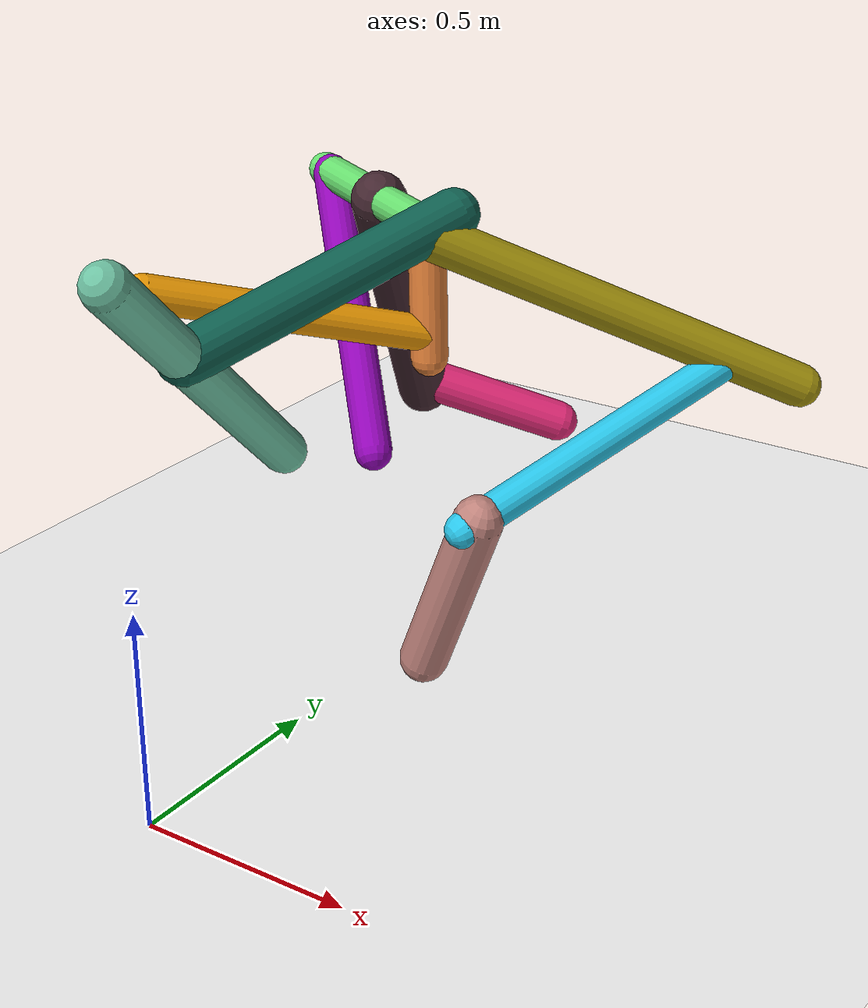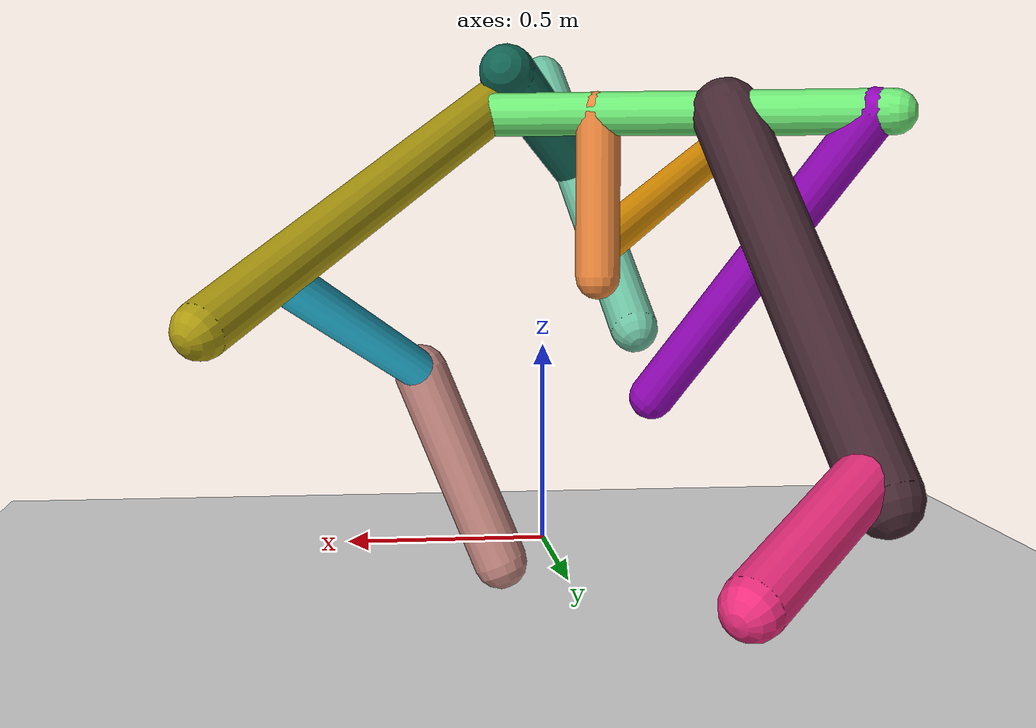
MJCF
<mujoco model="morphology">
  <option timestep="0.01"/>
  <default>
    <default class="/"/>
    <default class="0/"/>
    <default class="0/1/"/>
    <default class="0/1/2/"/>
    <default class="0/1/2/3/"/>
    <default class="0/1/2/3/4/"/>
    <default class="0/1/2/5/"/>
    <default class="0/1/2/5/6/"/>
    <default class="0/1/2/5/7/"/>
    <default class="0/1/2/5/7/8/"/>
    <default class="0/1/2/5/9/"/>
    <default class="0/1/2/5/9/10/"/>
  </default>
  <asset>
    <texture name="texplane" type="2d" builtin="checker" rgb1="0.10000000000000001 0.20000000000000001 0.29999999999999999" rgb2="0.20000000000000001 0.29999999999999999 0.40000000000000002" width="300" height="300"/>
    <material name="MatPlane" class="/" texture="texplane" texrepeat="20 20" specular="1" shininess="1" reflectance="0.5"/>
  </asset>
  <worldbody>
    <light name="//unnamed_light_0" class="/" directional="true" pos="0 0 1.5" dir="0 0 -1.3" cutoff="100" exponent="1" diffuse="1 1 1" specular="0.10000000000000001 0.10000000000000001 0.10000000000000001"/>
    <geom name="ground" class="/" type="plane" size="15 15 0.5" material="MatPlane" rgba="1 1 1 1"/>
    <site name="body" class="/" size="9.9999999999999995e-07 9.9999999999999995e-07 9.9999999999999995e-07" pos="0 0 1.1837309360504151"/>
    <body pos="0 0 1.1837309360504151" name="0/">
      <freejoint name="0/"/>
      <geom name="0/geom" class="0/" type="capsule" contype="1" conaffinity="1" condim="3" size="0.052288338146323457" rgba="0.42226951076375374 0.74847740433927057 0.62638258080796771 1" friction="0.59999999999999998 0.10000000000000001 0.10000000000000001" fromto="0 0 0 -0.12704674509612435 0.64384998989902753 -0.59277456994648003"/>
      <site name="0/end0" class="0/" size="0.0050000000000000001" pos="-0.12704674509612435 0.64384998989902753 -0.59277456994648003"/>
      <site name="0/attach1" class="0/" size="9.9999999999999995e-07 9.9999999999999995e-07 9.9999999999999995e-07" pos="-0.049154623440611972 0.24910676603153664 -0.22934559046628258"/>
      <body pos="-0.049154623440611972 0.24910676603153664 -0.22934559046628258" name="0/1/">
        <geom name="0/1/geom" class="0/1/" type="capsule" contype="1" conaffinity="1" condim="3" size="0.057500479084429568" rgba="0.064169073715757308 0.38423266517830568 0.32181332329965007 1" friction="0.59999999999999998 0.10000000000000001 0.10000000000000001" fromto="0 0 0 0.22654214215696611 0.63466869568983686 0.17996999594814711"/>
        <site name="0/1/end1" class="0/1/" size="0.0050000000000000001" pos="0.22654214215696611 0.63466869568983686 0.17996999594814711"/>
        <site name="0/1/attach2" class="0/1/" size="9.9999999999999995e-07 9.9999999999999995e-07 9.9999999999999995e-07" pos="0.19599134297576684 0.54907916394090861 0.15569977782226974"/>
        <body pos="0.19599134297576684 0.54907916394090861 0.15569977782226974" name="0/1/2/">
          <geom name="0/1/2/geom" class="0/1/2/" type="capsule" contype="1" conaffinity="1" condim="3" size="0.052369877896017096" rgba="0.66452054570830044 0.5929024489449527 0.056026679281930947 1" friction="0.59999999999999998 0.10000000000000001 0.10000000000000001" fromto="0 0 0 0.60259304777219969 0.68951502635638051 -0.44867558773393124"/>
          <site name="0/1/2/end2" class="0/1/2/" size="0.0050000000000000001" pos="0.60259304777219969 0.68951502635638051 -0.44867558773393124"/>
          <site name="0/1/2/attach3" class="0/1/2/" size="9.9999999999999995e-07 9.9999999999999995e-07 9.9999999999999995e-07" pos="0.48585681975661971 0.55593999817693907 -0.3617567361003613"/>
          <body pos="0.48585681975661971 0.55593999817693907 -0.3617567361003613" name="0/1/2/3/">
            <geom name="0/1/2/3/geom" class="0/1/2/3/" type="capsule" contype="1" conaffinity="1" condim="3" size="0.041376285610458516" rgba="0.16284962204922504 0.77488098302931951 0.91271055050106398 1" friction="0.59999999999999998 0.10000000000000001 0.10000000000000001" fromto="0 0 0 -0.30151948870085021 -0.66994289081919445 -0.25179534344808235"/>
            <site name="0/1/2/3/end3" class="0/1/2/3/" size="0.0050000000000000001" pos="-0.30151948870085021 -0.66994289081919445 -0.25179534344808235"/>
            <site name="0/1/2/3/attach4" class="0/1/2/3/" size="9.9999999999999995e-07 9.9999999999999995e-07 9.9999999999999995e-07" pos="-0.28528433035160056 -0.63387016807656993 -0.23823755555816215"/>
            <body pos="-0.28528433035160056 -0.63387016807656993 -0.23823755555816215" name="0/1/2/3/4/">
              <geom name="0/1/2/3/4/geom" class="0/1/2/3/4/" type="capsule" contype="1" conaffinity="1" condim="3" size="0.057365957236909126" rgba="0.74393400841757729 0.51080683595287346 0.48192800401603964 1" friction="0.59999999999999998 0.10000000000000001 0.10000000000000001" fromto="0 0 0 -0.16802162271192511 0.027785442388910009 -0.41009077311920722"/>
              <site name="0/1/2/3/4/end4" class="0/1/2/3/4/" size="0.0050000000000000001" pos="-0.16802162271192511 0.027785442388910009 -0.41009077311920722"/>
            </body>
          </body>
          <site name="0/1/2/attach5" class="0/1/2/" size="9.9999999999999995e-07 9.9999999999999995e-07 9.9999999999999995e-07" pos="0.084759402278571566 0.096985655098619214 -0.063109713551974492"/>
          <body pos="0.084759402278571566 0.096985655098619214 -0.063109713551974492" name="0/1/2/5/">
            <joint name="0/1/2/5/joint/" class="0/1/2/" type="hinge" axis="0 0.54540771226214657 0.83817088198348388" limited="true" range="-46.931161980203406 46.931161980203406"/>
            <geom name="0/1/2/5/geom" class="0/1/2/5/" type="capsule" contype="1" conaffinity="1" condim="3" size="0.043602435949648077" rgba="0.42287804036395948 0.90141170555389372 0.45112798410099064 1" friction="0.59999999999999998 0.10000000000000001 0.10000000000000001" fromto="0 0 0 -0.72832299073816664 0.41204442920978979 -0.0080158718035163723"/>
            <site name="0/1/2/5/end5" class="0/1/2/5/" size="0.0050000000000000001" pos="-0.72832299073816664 0.41204442920978979 -0.0080158718035163723"/>
            <site name="0/1/2/5/attach6" class="0/1/2/5/" size="9.9999999999999995e-07 9.9999999999999995e-07 9.9999999999999995e-07" pos="-0.69832636092602796 0.39507401310822882 -0.0076857309976248248"/>
            <body pos="-0.69832636092602796 0.39507401310822882 -0.0076857309976248248" name="0/1/2/5/6/">
              <joint name="0/1/2/5/6/joint/" class="0/1/2/5/" type="hinge" axis="8.6736173798840355e-19 0.019450221493714375 0.99981082654862552" limited="true" range="-48.366431699162163 48.366431699162163"/>
              <geom name="0/1/2/5/6/geom" class="0/1/2/5/6/" type="capsule" contype="1" conaffinity="1" condim="3" size="0.046111230336415954" rgba="0.57292148179427405 0.021660126271155322 0.7182727881708193 1" friction="0.59999999999999998 0.10000000000000001 0.10000000000000001" fromto="0 0 0 0.35683083533172155 -0.33132996753047095 -0.56230530141512058"/>
              <site name="0/1/2/5/6/end6" class="0/1/2/5/6/" size="0.0050000000000000001" pos="0.35683083533172155 -0.33132996753047095 -0.56230530141512058"/>
            </body>
            <site name="0/1/2/5/attach7" class="0/1/2/5/" size="9.9999999999999995e-07 9.9999999999999995e-07 9.9999999999999995e-07" pos="-0.44863564198862421 0.25381296399694042 -0.0049376524404704959"/>
            <body pos="-0.44863564198862421 0.25381296399694042 -0.0049376524404704959" name="0/1/2/5/7/">
              <joint name="0/1/2/5/7/joint/" class="0/1/2/5/" type="hinge" axis="-0.49247521979685732 -0.87016182360626226 0.016928042540748669" limited="true" range="-32.813194486834625 32.813194486834625"/>
              <geom name="0/1/2/5/7/geom" class="0/1/2/5/7/" type="capsule" contype="1" conaffinity="1" condim="3" size="0.068567529184124176" rgba="0.2688189758039462 0.15610056652498783 0.19377558463714306 1" friction="0.59999999999999998 0.10000000000000001 0.10000000000000001" fromto="0 0 0 -0.18215600939475429 0.43856439436738337 -0.67026120373462017"/>
              <site name="0/1/2/5/7/end7" class="0/1/2/5/7/" size="0.0050000000000000001" pos="-0.18215600939475429 0.43856439436738337 -0.67026120373462017"/>
              <site name="0/1/2/5/7/attach8" class="0/1/2/5/7/" size="9.9999999999999995e-07 9.9999999999999995e-07 9.9999999999999995e-07" pos="-0.17001713482281397 0.40933846768709703 -0.6255950040873709"/>
              <body pos="-0.17001713482281397 0.40933846768709703 -0.6255950040873709" name="0/1/2/5/7/8/">
                <joint name="0/1/2/5/7/8/joint/" class="0/1/2/5/7/" type="hinge" axis="-0.97510330673215917 -0.12141454651287847 0.18555874836579611" limited="true" range="-44.037597610287079 44.037597610287079"/>
                <geom name="0/1/2/5/7/8/geom" class="0/1/2/5/7/8/" type="capsule" contype="1" conaffinity="1" condim="3" size="0.056462233378987259" rgba="0.92641753841017038 0.17344250569073349 0.49123516482485707 1" friction="0.59999999999999998 0.10000000000000001 0.10000000000000001" fromto="0 0 0 0.27533227785052894 0.27347782635834639 -0.16367924731591765"/>
                <site name="0/1/2/5/7/8/end8" class="0/1/2/5/7/8/" size="0.0050000000000000001" pos="0.27533227785052894 0.27347782635834639 -0.16367924731591765"/>
              </body>
            </body>
            <site name="0/1/2/5/attach9" class="0/1/2/5/" size="9.9999999999999995e-07 9.9999999999999995e-07 9.9999999999999995e-07" pos="-0.22070124179073336 0.12486042368014051 -0.0024290224029291808"/>
            <body pos="-0.22070124179073336 0.12486042368014051 -0.0024290224029291808" name="0/1/2/5/9/">
              <joint name="0/1/2/5/9/joint/" class="0/1/2/5/" type="hinge" axis="-0.49247521979685732 -0.87016182360626226 0.016928042540748669" limited="true" range="-32.168554525785538 32.168554525785538"/>
              <geom name="0/1/2/5/9/geom" class="0/1/2/5/9/" type="capsule" contype="1" conaffinity="1" condim="3" size="0.044601565409275123" rgba="0.90816856683099934 0.51984900388809574 0.2339490784899072 1" friction="0.59999999999999998 0.10000000000000001 0.10000000000000001" fromto="0 0 0 0.00066211695356177547 0.0042609961459545431 -0.32043384302440042"/>
              <site name="0/1/2/5/9/end9" class="0/1/2/5/9/" size="0.0050000000000000001" pos="0.00066211695356177547 0.0042609961459545431 -0.32043384302440042"/>
              <site name="0/1/2/5/9/attach10" class="0/1/2/5/9/" size="9.9999999999999995e-07 9.9999999999999995e-07 9.9999999999999995e-07" pos="0.00054068720275052338 0.0034795455314858845 -0.26166748535808143"/>
              <body pos="0.00054068720275052338 0.0034795455314858845 -0.26166748535808143" name="0/1/2/5/9/10/">
                <geom name="0/1/2/5/9/10/geom" class="0/1/2/5/9/10/" type="capsule" contype="1" conaffinity="1" condim="3" size="0.042994294900876188" rgba="0.94237360477498011 0.61483944133573598 0.01442992119815989 1" friction="0.59999999999999998 0.10000000000000001 0.10000000000000001" fromto="0 0 0 -0.35479597248375738 -0.57292576850637933 0.19821377086941228"/>
                <site name="0/1/2/5/9/10/end10" class="0/1/2/5/9/10/" size="0.0050000000000000001" pos="-0.35479597248375738 -0.57292576850637933 0.19821377086941228"/>
              </body>
            </body>
          </body>
        </body>
      </body>
      <camera name="0/iso" class="0/" mode="trackcom" pos="-2.2999999999999998 -2.2999999999999998 1" xyaxes="0.45000000000000001 -0.45000000000000001 0 0.29999999999999999 0.14999999999999999 0.93999999999999995"/>
    </body>
  </worldbody>
  <actuator>
    <motor name="0/1/2/5/motor" class="0/1/2/5/" ctrllimited="true" ctrlrange="-1 1" gear="59" joint="0/1/2/5/joint/"/>
    <motor name="0/1/2/5/6/motor" class="0/1/2/5/6/" ctrllimited="true" ctrlrange="-1 1" gear="82" joint="0/1/2/5/6/joint/"/>
    <motor name="0/1/2/5/7/motor" class="0/1/2/5/7/" ctrllimited="true" ctrlrange="-1 1" gear="83" joint="0/1/2/5/7/joint/"/>
    <motor name="0/1/2/5/7/8/motor" class="0/1/2/5/7/8/" ctrllimited="true" ctrlrange="-1 1" gear="86" joint="0/1/2/5/7/8/joint/"/>
    <motor name="0/1/2/5/9/motor" class="0/1/2/5/9/" ctrllimited="true" ctrlrange="-1 1" gear="93" joint="0/1/2/5/9/joint/"/>
  </actuator>
  <sensor>
    <subtreelinvel name="velocity" body="0/"/>
  </sensor>
</mujoco>
